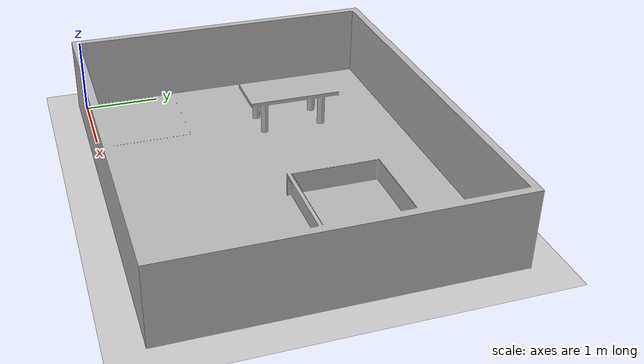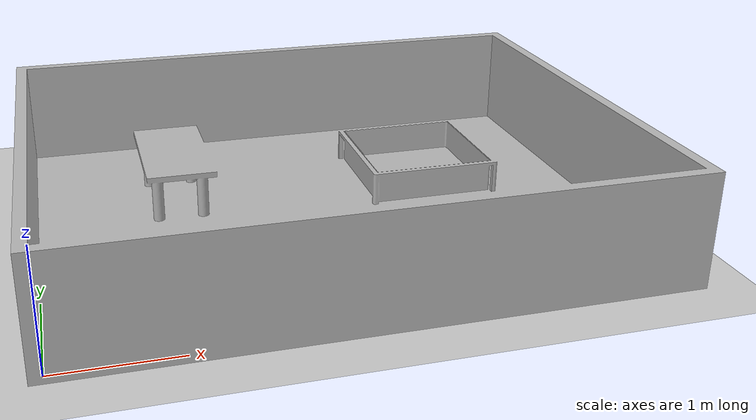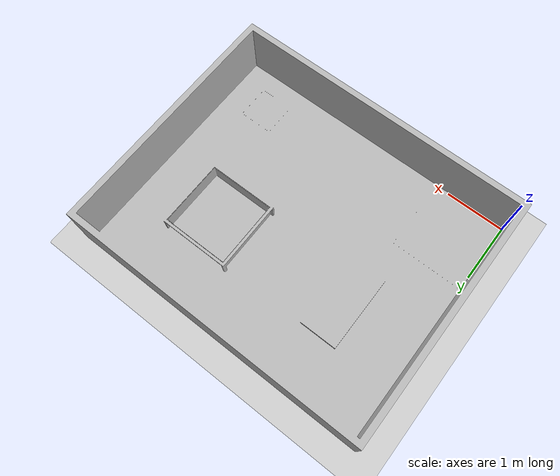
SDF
<?xml version="1.0"?>
<sdf version="1.4">
  <world name="default">
    <!-- A ground plane -->
    <include>
      <uri>model://ground_plane</uri>
    </include>
    <!-- A global light source -->
    <include>
      <uri>model://sun</uri>
    </include>
    <include>
      <uri>model://challenge_2</uri>
      <name>Challenge 2</name>
    </include>
  </world>
</sdf>

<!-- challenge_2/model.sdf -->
<sdf version="1.5">
  <model name="challenge_2_model">
    <static>true</static>
    <link name="challenge_2_model_link">
      <visual name="challenge_2_model">
        <pose>0 0 0 0 0 0</pose>
        <geometry>
          <mesh>
            <uri>model://challenge_2/meshes/2.dae</uri>
            <scale>1 1 1</scale>
          </mesh>
        </geometry>
      </visual>
      <collision name="challenge_2_model_collision">
        <pose>0 0 0 0 0 0</pose>
        <geometry>
          <mesh>
            <uri>model://challenge_2/meshes/2.dae</uri>
            <scale>1 1 1</scale>
          </mesh>
        </geometry>
      </collision>
    </link>
  </model>
</sdf>
